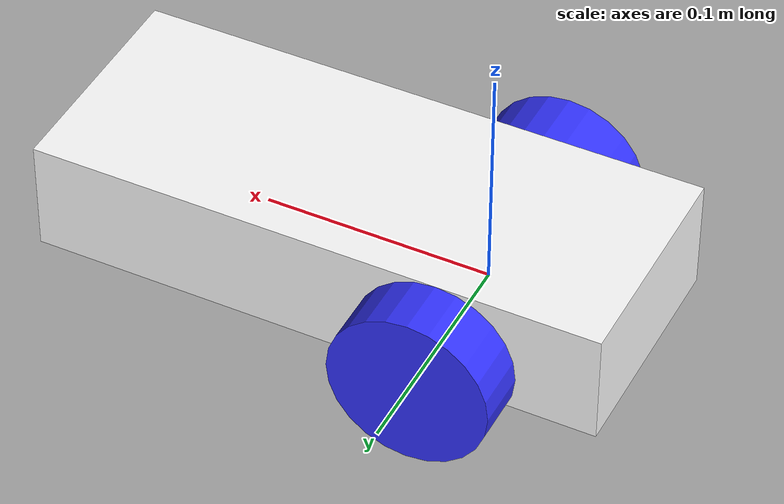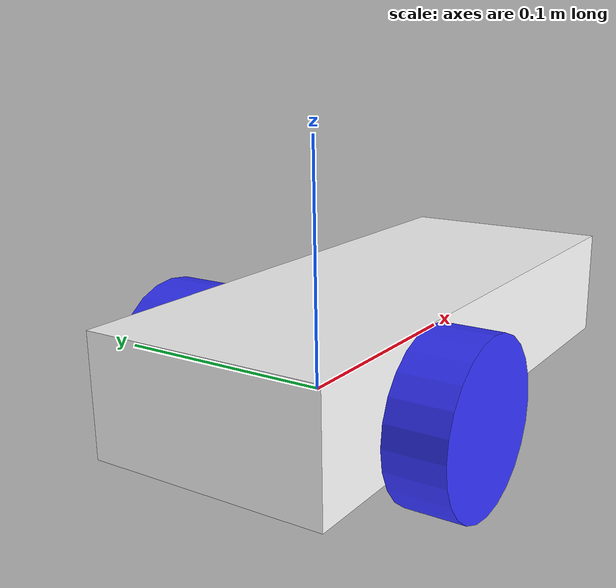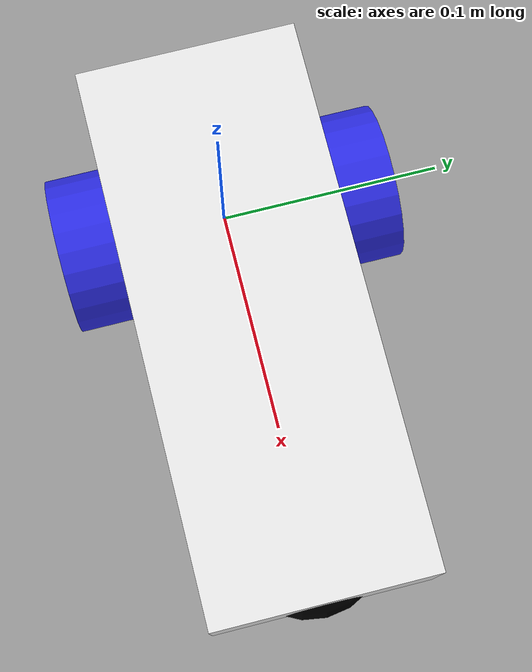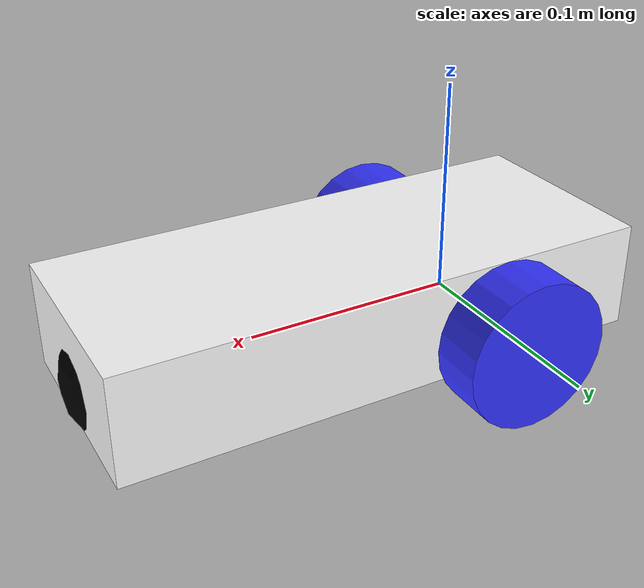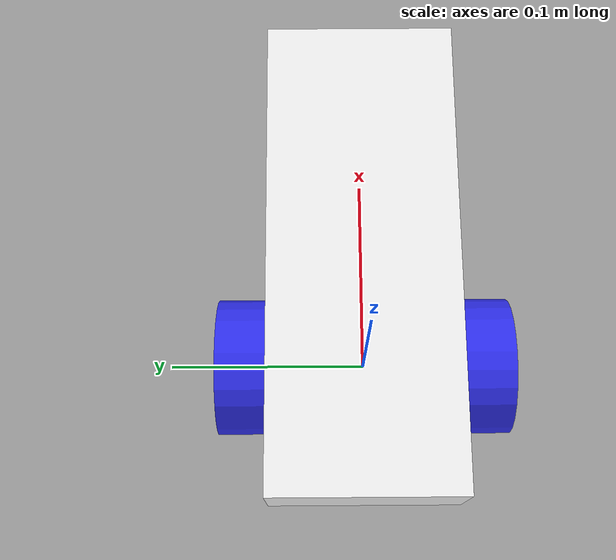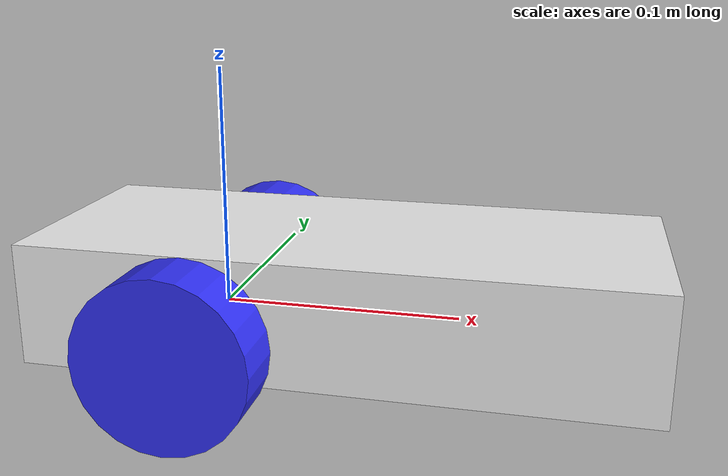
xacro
<?xml version="1.0"?>
<robot xmlns:xacro="http://www.ros.org/wiki/xacro">
    <xacro:include filename="inertial_macros.xacro"/>

    <material name="white">
        <color rgba="1 1 1 1" />
    </material>

    <material name="orange">
        <color rgba="1 0.3 0.1 1" />
    </material>

    <material name="blue">
        <color rgba="0.2 0.2 1 1" />
    </material>

    <material name="black">
        <color rgba="0 0 0 1" />
    </material>

    <material name="red">
        <color rgba="1 0 0 1" />
    </material>

    <!--BASE LINK-->

    <link name="base_link">

    </link>

    <!-- BASE FOOTPRINT LINK -->

    <joint name="base_footprint_joint" type="fixed">
        <parent link="base_link"/>
        <child link="base_footprint"/>
        <origin xyz="0 0 -0.035" rpy="0 0 0"/>
    </joint>

    <link name="base_footprint">
    </link>

    <!--CHASSIS LINK-->

   <joint name="chassis_joint" type="fixed">
        <parent link="base_link"/>
        <child link="chassis"/>
        <origin xyz="-0.07 0 -0.015"/>
    </joint>

    <link name="chassis">

        <visual>
            <origin xyz="0.125 0 0.025" />
            <geometry>
                <box size="0.250 0.1 0.05"/>
            </geometry>
            <material name="white"/>
        </visual>

         <collision>
            <origin xyz="0.125 0 0.025" />
            <geometry>
                <box size="0.250 0.1 0.05"/>
            </geometry>
        </collision>

        <xacro:inertial_box mass="0.5" x="0.25" y="0.1" z="0.05">
            <origin xyz="0.125 0 0.025"/>
        </xacro:inertial_box>

    </link>

    <gazebo reference="chassis">
        <material>Gazebo/White</material>
    </gazebo>

    <!--LEFT WHEEL LINK-->

    <joint name="left_wheel_joint" type="continuous">
        <parent link="base_link"/>
        <child link="left_wheel"/>
        <origin xyz="0 0.0625 0" rpy="-${pi/2} 0 0"/>
        <axis xyz="0 0 1"/>
    </joint>

    <link name="left_wheel">

        <visual>
            <geometry>
                <cylinder radius="0.035" length="0.025"/>
            </geometry>
            <material name="blue"/>
        </visual>

        <collision>
            <geometry>
                <cylinder radius="0.035" length="0.025"/>
            </geometry>
        </collision>

        <xacro:inertial_cylinder mass="0.1" length="0.025" radius="0.035">
            <origin xyz="0 0 0"/>
        </xacro:inertial_cylinder>

    </link>

    <gazebo reference="left_wheel">
        <material>Gazebo/Blue</material>
    </gazebo>

     <!--RIGHT WHEEL LINK-->

    <joint name="right_wheel_joint" type="continuous">
        <parent link="base_link"/>
        <child link="right_wheel"/>
        <origin xyz="0 -0.0625 0" rpy="${pi/2} 0 0"/>
        <axis xyz="0 0 -1"/>
    </joint>

    <link name="right_wheel">

        <visual>
            <geometry>
                <cylinder radius="0.035" length="0.025"/>
            </geometry>
            <material name="blue"/>
        </visual>

        <collision>
            <geometry>
                <cylinder radius="0.035" length="0.025"/>
            </geometry>
        </collision>

        <xacro:inertial_cylinder mass="0.1" length="0.025" radius="0.035">
            <origin xyz="0 0 0"/>
        </xacro:inertial_cylinder>

    </link>

    <gazebo reference="right_wheel">
        <material>Gazebo/Blue</material>
    </gazebo>

    <!--CASTER WHEEL JOINT-->

    <joint name="caster_wheel_joint" type="fixed">
        <parent link="base_link"/>
        <child link="caster_wheel"/>
        <origin xyz="0.15 0 0" rpy="0 0 0"/>
    </joint>

    <link name="caster_wheel">
        <visual>
            <geometry>
                <sphere radius="0.035"/>
            </geometry>
            <material name="black"/>
        </visual>

        <collision>
            <geometry>
                <sphere radius="0.035"/>
            </geometry>
        </collision>

        <xacro:inertial_sphere mass="0.1" radius="0.035">
            <origin xyz="0 0 0" rpy="0 0 0"/>
        </xacro:inertial_sphere>
    </link>
    <gazebo reference="caster_wheel">
        <material>Gazebo/Black</material>
        <mu1>0.0001</mu1>
        <mu2>0.0001</mu2>
    </gazebo>

</robot>

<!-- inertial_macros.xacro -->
<robot xmlns:xacro="http://www.ros.org/wiki/xacro" >

    <!-- Specify some standard inertial calculations https://en.wikipedia.org/wiki/List_of_moments_of_inertia -->
    <!-- These make use of xacro's mathematical functionality -->

    <xacro:macro name="inertial_sphere" params="mass radius *origin">
        <inertial>
            <xacro:insert_block name="origin"/>
            <mass value="${mass}" />
            <inertia ixx="${(2/5) * mass * (radius*radius)}" ixy="0.0" ixz="0.0"
                    iyy="${(2/5) * mass * (radius*radius)}" iyz="0.0"
                    izz="${(2/5) * mass * (radius*radius)}" />
        </inertial>
    </xacro:macro>

    <xacro:macro name="inertial_box" params="mass x y z *origin">
        <inertial>
            <xacro:insert_block name="origin"/>
            <mass value="${mass}" />
            <inertia ixx="${(1/12) * mass * (y*y+z*z)}" ixy="0.0" ixz="0.0"
                    iyy="${(1/12) * mass * (x*x+z*z)}" iyz="0.0"
                    izz="${(1/12) * mass * (x*x+y*y)}" />
        </inertial>
    </xacro:macro>

    <xacro:macro name="inertial_cylinder" params="mass length radius *origin">
        <inertial>
            <xacro:insert_block name="origin"/>
            <mass value="${mass}" />
            <inertia ixx="${(1/12) * mass * (3*radius*radius + length*length)}" ixy="0.0" ixz="0.0"
                    iyy="${(1/12) * mass * (3*radius*radius + length*length)}" iyz="0.0"
                    izz="${(1/2) * mass * (radius*radius)}" />
        </inertial>
    </xacro:macro>

</robot>
